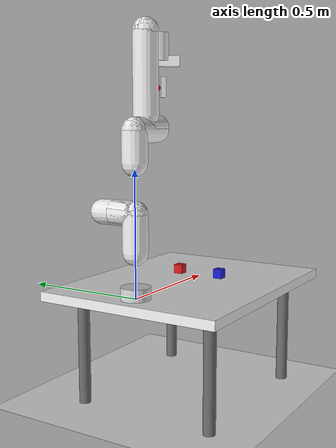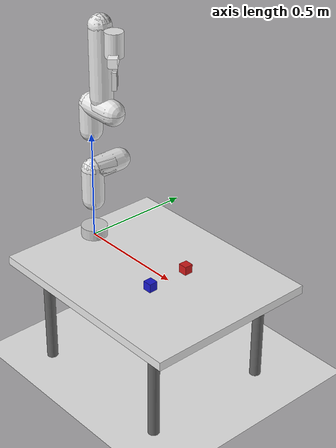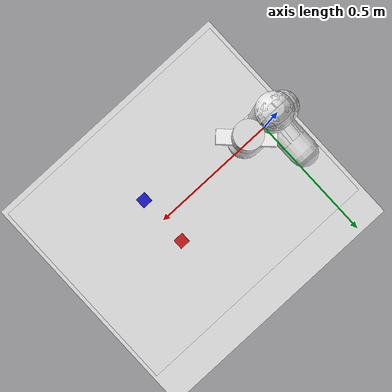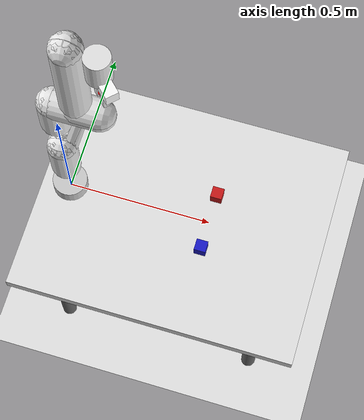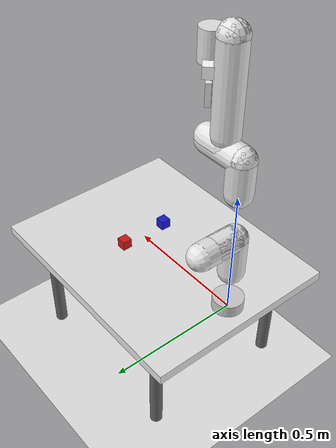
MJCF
<mujoco model="franka_vision_scene">
  <!-- Franka Panda robot (MuJoCo Menagerie) -->
  <include file="panda.xml"/>

  <option gravity="0 0 -9.81" timestep="0.002"/>

  <statistic center="0.4 0 0.4" extent="1"/>

  <visual>
    <headlight ambient="0.5 0.5 0.5" diffuse="0.6 0.6 0.6"/>
    <global offwidth="640" offheight="480"/>
  </visual>

  <asset>
    <texture name="grid" type="2d" builtin="checker" rgb1="0.2 0.2 0.2" rgb2="0.3 0.3 0.3" width="512" height="512"/>
    <material name="grid" texture="grid" texrepeat="2 2"/>
    <texture name="wood" type="2d" builtin="flat" rgb1="0.55 0.35 0.2" width="64" height="64"/>
    <material name="table_mat" texture="wood" rgba="0.6 0.4 0.25 1"/>
  </asset>

  <worldbody>
    <!-- Floor well below the table -->
    <geom name="floor" pos="0 0 -0.5" size="2 2 0.05" type="plane" material="grid"/>

    <!-- Lighting -->
    <light pos="0.5 0.0 1.5" dir="0 0 -1" diffuse="0.8 0.8 0.8"/>
    <light pos="0.0 0.5 1.2" dir="0 0 -1" diffuse="0.4 0.4 0.4"/>
    <light pos="0.5 -0.5 1.0" dir="0 0 -1" diffuse="0.3 0.3 0.3"/>

    <!-- Table surface at z=0 (robot base is at z=0 from included panda.xml) -->
    <geom name="table_top" type="box" pos="0.4 0.0 -0.02" size="0.5 0.4 0.02" material="table_mat"/>
    <!-- Table legs -->
    <geom name="leg1" type="cylinder" pos="0.05 -0.3 -0.27" size="0.025 0.23" rgba="0.4 0.4 0.4 1"/>
    <geom name="leg2" type="cylinder" pos="0.05 0.3 -0.27" size="0.025 0.23" rgba="0.4 0.4 0.4 1"/>
    <geom name="leg3" type="cylinder" pos="0.75 -0.3 -0.27" size="0.025 0.23" rgba="0.4 0.4 0.4 1"/>
    <geom name="leg4" type="cylinder" pos="0.75 0.3 -0.27" size="0.025 0.23" rgba="0.4 0.4 0.4 1"/>

    <!-- Red block on table surface (z=0.02 = table_top + half block height) -->
    <body name="red_block" pos="0.5 0.1 0.02">
      <geom name="red_block_geom" type="box" size="0.02 0.02 0.02" rgba="0.8 0.1 0.1 1" mass="0.05"/>
      <freejoint/>
    </body>

    <!-- Blue block on table surface -->
    <body name="blue_block" pos="0.5 -0.1 0.02">
      <geom name="blue_block_geom" type="box" size="0.02 0.02 0.02" rgba="0.1 0.1 0.8 1" mass="0.05"/>
      <freejoint/>
    </body>

    <!-- ==================== CAMERAS ==================== -->

    <camera name="agentview"
            pos="1.0 0.0 0.6"
            xyaxes="0 1 0 -0.757 0 0.653"
            mode="fixed"/>

    <camera name="robot0_eye_in_hand"
            pos="0.55 0.0 0.45"
            xyaxes="0 -1 0 -1 0 0"
            mode="fixed"/>

    <!-- Debug overview camera -->
    <camera name="third_person"
            pos="1.2 0.8 0.7"
            xyaxes="-0.8 0.6 0 -0.3 -0.4 1"
            mode="fixed"/>
  </worldbody>

  <!-- Sensors to read gripper pose (position + quaternion) -->
  <sensor>
    <framepos name="ee_pos" objtype="body" objname="hand"/>
    <framequat name="ee_quat" objtype="body" objname="hand"/>
  </sensor>
</mujoco>

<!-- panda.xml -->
<mujoco model="franka_panda">
  <compiler angle="radian" meshdir="."/>

  <default>
    <joint damping="1" armature="0.1"/>
    <!-- Visual settings for the robot links -->
    <geom type="capsule" rgba="0.9 0.9 0.9 1" size="0.05"/>
    <site rgba="1 0 0 1" size="0.01"/>
  </default>

  <asset>
    <!-- We use procedural textures or colors instead of meshes for simplicity -->
  </asset>

  <worldbody>
    <!-- Robot Base -->
    <body name="link0" pos="0 0 0">
      <geom type="cylinder" fromto="0 0 0 0 0 0.05" size="0.06" rgba="0.8 0.8 0.8 1"/>

      <!-- Joint 1 -->
      <body name="link1" pos="0 0 0.333">
        <joint name="joint1" axis="0 0 1" range="-2.8973 2.8973"/>
        <geom fromto="0 0 0 0 0 -0.15"/>
        <geom fromto="0 0 0 0 0.1 0" size="0.05"/>

        <!-- Joint 2 -->
        <body name="link2" pos="0 0 0" quat="0.707107 -0.707107 0 0">
          <joint name="joint2" axis="0 0 1" range="-1.7628 1.7628"/>
          <geom fromto="0 0 0 0 0 0.15"/>

          <!-- Joint 3 -->
          <body name="link3" pos="0 -0.316 0" quat="0.707107 0.707107 0 0">
            <joint name="joint3" axis="0 0 1" range="-2.8973 2.8973"/>
            <geom fromto="0 0 0 0 0 -0.125"/>
            <geom fromto="0 0 0 0.15 0 0" size="0.05"/>

            <!-- Joint 4 -->
            <body name="link4" pos="0.15 0 0.01" quat="0.707107 0.707107 0 0">
              <joint name="joint4" axis="0 0 1" range="-3.0718 -0.0698"/>
              <geom fromto="0 0 0 -0.075 0 0"/>

              <!-- Joint 5 -->
              <body name="link5" pos="-0.0725 0.36 0" quat="0.707107 -0.707107 0 0">
                <joint name="joint5" axis="0 0 1" range="-2.8973 2.8973"/>
                <geom fromto="0 0 0 0 0 -0.3175"/>

                <!-- Joint 6 -->
                <body name="link6" pos="0 0 0" quat="0.707107 0.707107 0 0">
                  <joint name="joint6" axis="0 0 1" range="-0.0175 3.7525"/>
                  <geom fromto="0 0 0 0 0 0.001"/>

                  <!-- Joint 7 -->
                  <body name="link7" pos="0.088 0 0" quat="0.707107 0.707107 0 0">
                    <joint name="joint7" axis="0 0 1" range="-2.8973 2.8973"/>
                    <geom type="cylinder" fromto="0 0 0 0 0 0.107" size="0.04"/>

                    <!-- Hand -->
                    <body name="hand" pos="0 0 0.107" quat="0.92388 0 0 -0.382683">
                      <geom type="box" size="0.02 0.08 0.02" rgba="1 1 1 1"/>

                      <!-- Attachment Site for IK -->
                      <site name="attachment_site" pos="0 0 0.1034" />

                      <!-- Fingers -->
                      <body name="left_finger" pos="0 0 0.0584">
                          <joint name="finger_joint1" type="slide" axis="0 1 0" range="0 0.04"/>
                          <geom type="box" size="0.01 0.01 0.04" pos="0 0.02 0.04" friction="5 5 0.1" solimp="0.99 0.99 0.001" solref="0.002 1"/>
                        </body>
                        <body name="right_finger" pos="0 0 0.0584">
                          <joint name="finger_joint2" type="slide" axis="0 -1 0" range="0 0.04"/>
                          <geom type="box" size="0.01 0.01 0.04" pos="0 -0.02 0.04" friction="5 5 0.1" solimp="0.99 0.99 0.001" solref="0.002 1"/>
                        </body>
                    </body>
                  </body>
                </body>
              </body>
            </body>
          </body>
        </body>
      </body>
    </body>
  </worldbody>

  <actuator>
    <motor name="ctrl_joint1" joint="joint1" gear="100"/>
    <motor name="ctrl_joint2" joint="joint2" gear="100"/>
    <motor name="ctrl_joint3" joint="joint3" gear="100"/>
    <motor name="ctrl_joint4" joint="joint4" gear="100"/>
    <motor name="ctrl_joint5" joint="joint5" gear="100"/>
    <motor name="ctrl_joint6" joint="joint6" gear="100"/>
    <motor name="ctrl_joint7" joint="joint7" gear="100"/>
    <position name="ctrl_finger1" joint="finger_joint1" kp="100"/>
    <position name="ctrl_finger2" joint="finger_joint2" kp="100"/>
  </actuator>

  <sensor>
     <jointpos name="jp1" joint="joint1"/>
     <jointpos name="jp2" joint="joint2"/>
     <jointpos name="jp3" joint="joint3"/>
     <jointpos name="jp4" joint="joint4"/>
     <jointpos name="jp5" joint="joint5"/>
     <jointpos name="jp6" joint="joint6"/>
     <jointpos name="jp7" joint="joint7"/>
  </sensor>
</mujoco>
